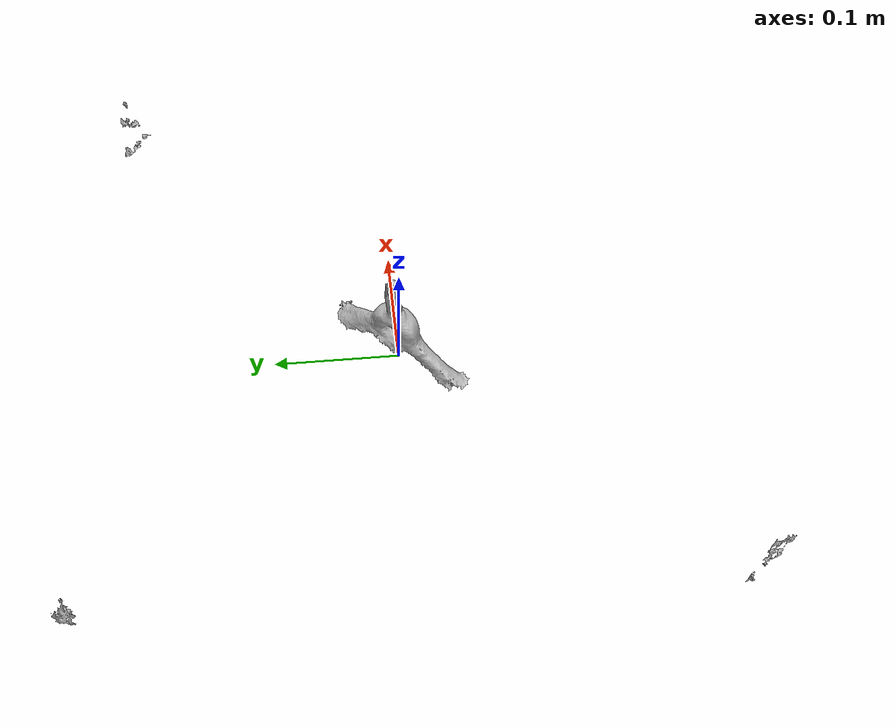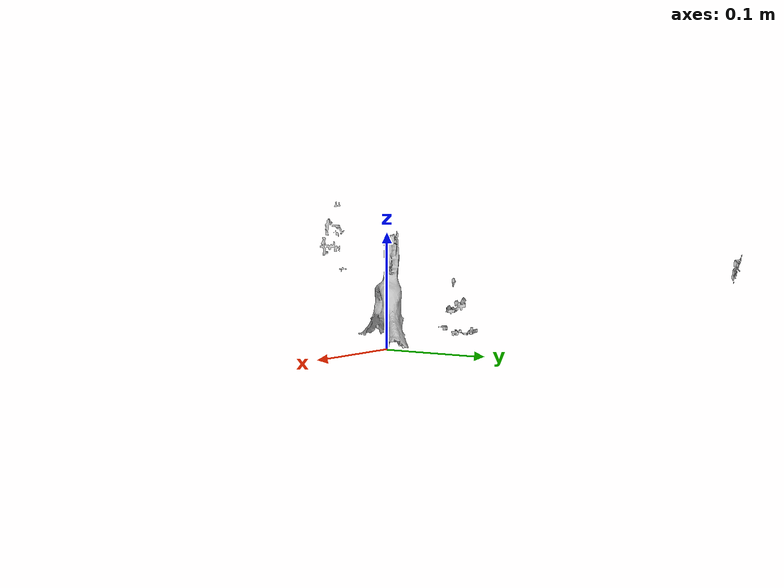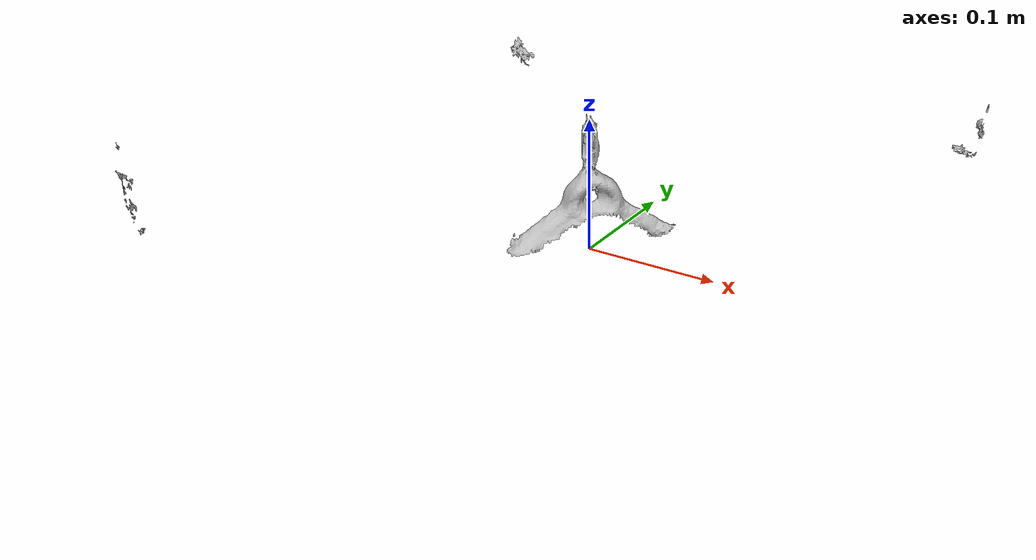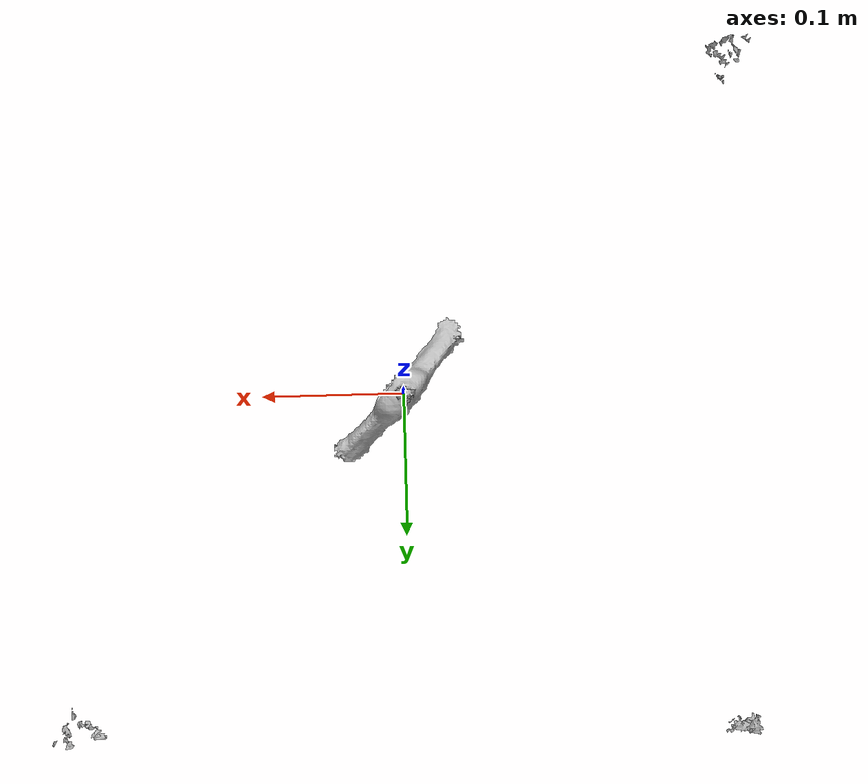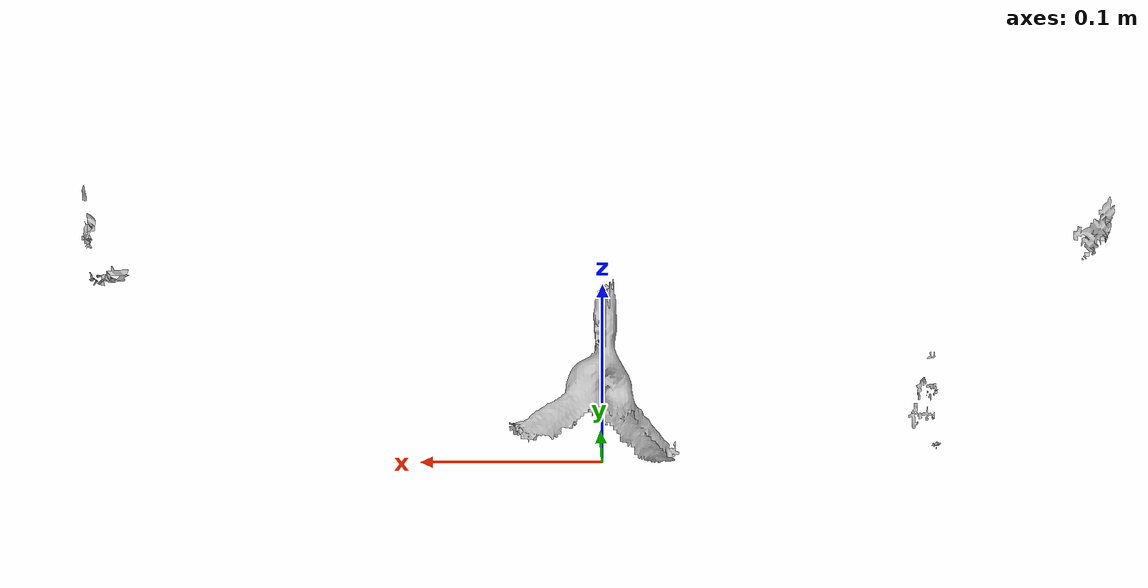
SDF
<?xml version='1.0'?>
<sdf version="1.4">
  <model name="h_toy_airplane">
    <static>false</static>
    <link name="link">
      <inertial>
        <pose>-0.07455747513786087 0.06388516331734347 -0.047035564645148124 -0.40405534773557705 0.07766642156072293 -2.2424486375078887</pose>
        <mass>-4.51855637121598e-05</mass>
        <inertia>
          <ixx>-1.1301454762607746e-07</ixx>
          <ixy>-1.8010426183364556e-22</ixy>
          <ixz>-1.0925888480452916e-23</ixz>
          <iyy>-1.571639101584565e-06</iyy>
          <iyz>2.566362700461657e-24</iyz>
          <izz>-2.301859090508582e-06</izz>
        </inertia>
      </inertial>
      <collision name="collision">
        <geometry>
          <mesh>
            <!-- Use a downsampled mesh for collisions -->
            <uri>model://072-h_toy_airplane/downsampled.obj</uri>
	        </mesh>
        </geometry>
        <surface>
      </surface>
      </collision>
      <visual name="visual">
        <geometry>
          <mesh>
            <uri>model://072-h_toy_airplane/tsdf/textured.obj</uri>
	        </mesh>
        </geometry>
        <material>
          <script>
            <uri>model://072-h_toy_airplane/h_toy_airplane.material</uri>
            <name>h_toy_airplane</name>
          </script>
        </material>
      </visual>
    </link>
  </model>
</sdf>
